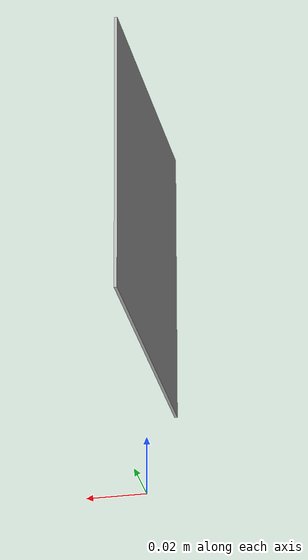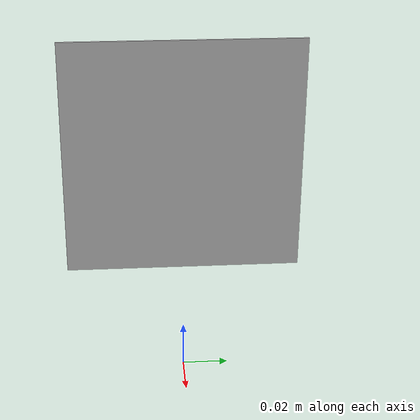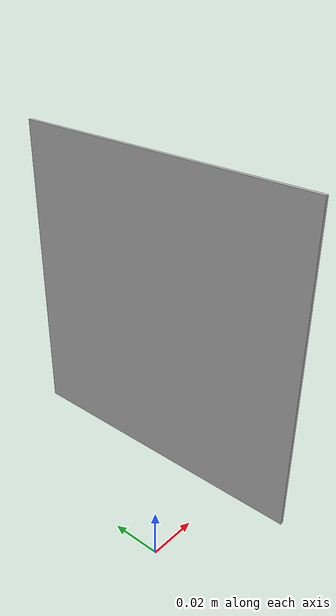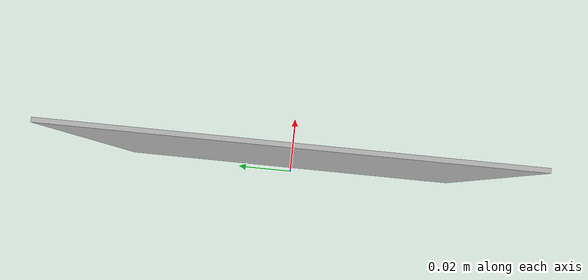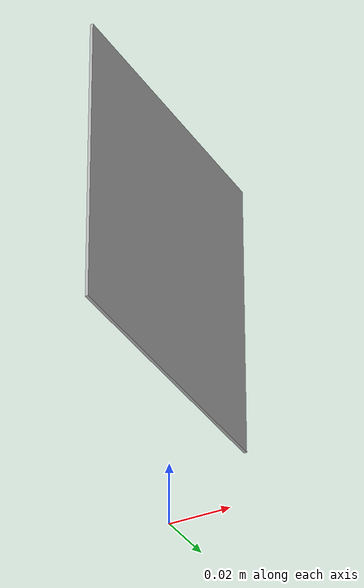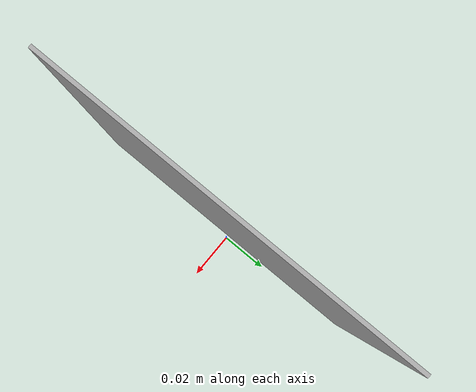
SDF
<?xml version="1.0" ?>
<sdf version="1.6">
  <model name="textured_shapes">
    <pose>0 0 0.1 0 0 0</pose>
    <link name="chassis">
      <pose>0 0 0 0 0 0</pose>
      <collision name="collision">
        <geometry>
          <box>
            <size>0.001 0.1 0.1</size>
          </box>
        </geometry>
      </collision>
      <visual name="visual">
        <geometry>
          <box>
            <size>0.001 0.1 0.1</size>
          </box>
        </geometry>
        <material>
          <script>
            <uri>model://textured_shapes/materials/scripts</uri>
            <uri>model://textured_shapes/materials/textures</uri>
            <name>TexturedShape/Squares</name>
          </script>
        </material>
      </visual>
    </link>
  </model>
</sdf>
